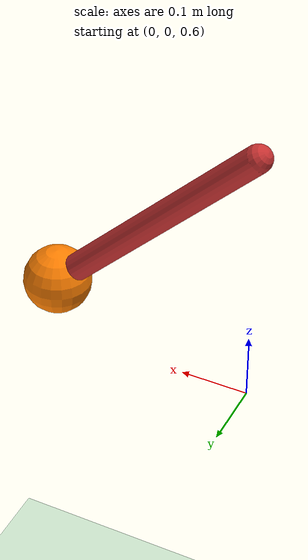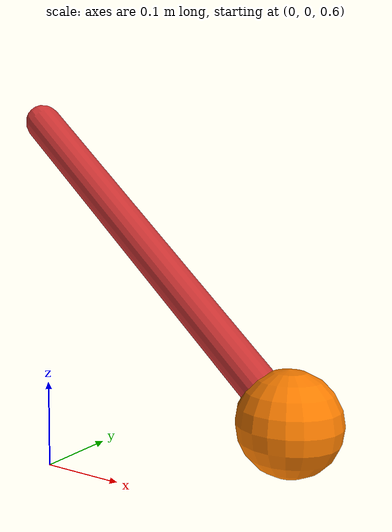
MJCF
<mujoco model="hello_pendulum">
  <option gravity="0 0 -9.81"/>
  <worldbody>
    <light pos="0 0 3"/>
    <geom type="plane" size="2 2 0.1" rgba="0.8 0.9 0.8 1"/>
    <body pos="0 0 1">
      <joint type="hinge" axis="0 1 0"/>
      <geom type="capsule" fromto="0 0 0 0.3 0 -0.3" size="0.02" rgba="0.8 0.2 0.2 1"/>
      <geom type="sphere" pos="0.3 0 -0.3" size="0.05" rgba="1 0.5 0 1"/>
    </body>
  </worldbody>
</mujoco>
